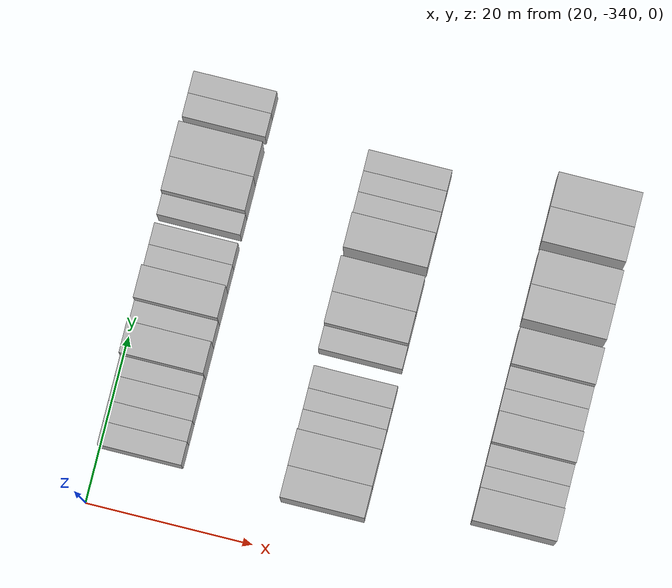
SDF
<sdf version="1.6">
 <world name="default">
  <model name="building_14">
   <static>1</static>
   <pose>25.0000 -332.0354 0 0.000000 0.000000 0.000000</pose>
   <link name="link">
    <pose>0 0 3.00 0 0 0</pose>
    <collision name="collision"><geometry><box><size>10.0000 2.7726 6.0000</size></box></geometry></collision>
    <visual name="visual">
     <cast_shadows>0</cast_shadows>
     <geometry><box><size>10.0000 2.7726 6.0000</size></box></geometry>
     <material>
      <script>
       <uri>model://HANNAS_wall/materials/scripts</uri>
       <uri>model://HANNAS_wall/materials/textures</uri>
       <name>vrc/HANNAS_wall</name>
      </script>
     </material>
    </visual>
   </link>
  </model>
  <model name="building_15">
   <static>1</static>
   <pose>25.0000 -329.4083 0 0.000000 0.000000 0.000000</pose>
   <link name="link">
    <pose>0 0 3.00 0 0 0</pose>
    <collision name="collision"><geometry><box><size>10.0000 2.4817 6.0000</size></box></geometry></collision>
    <visual name="visual">
     <cast_shadows>0</cast_shadows>
     <geometry><box><size>10.0000 2.4817 6.0000</size></box></geometry>
     <material>
      <script>
       <uri>model://HANNAS_wall/materials/scripts</uri>
       <uri>model://HANNAS_wall/materials/textures</uri>
       <name>vrc/HANNAS_wall</name>
      </script>
     </material>
    </visual>
   </link>
  </model>
  <model name="building_16">
   <static>1</static>
   <pose>25.0000 -326.6706 0 0.000000 0.000000 0.000000</pose>
   <link name="link">
    <pose>0 0 3.00 0 0 0</pose>
    <collision name="collision"><geometry><box><size>10.0000 2.9936 6.0000</size></box></geometry></collision>
    <visual name="visual">
     <cast_shadows>0</cast_shadows>
     <geometry><box><size>10.0000 2.9936 6.0000</size></box></geometry>
     <material>
      <script>
       <uri>model://HANNAS_wall/materials/scripts</uri>
       <uri>model://HANNAS_wall/materials/textures</uri>
       <name>vrc/HANNAS_wall</name>
      </script>
     </material>
    </visual>
   </link>
  </model>
  <model name="building_17">
   <static>1</static>
   <pose>25.0000 -323.9668 0 0.000000 0.000000 0.000000</pose>
   <link name="link">
    <pose>0 0 3.00 0 0 0</pose>
    <collision name="collision"><geometry><box><size>10.0000 2.4140 6.0000</size></box></geometry></collision>
    <visual name="visual">
     <cast_shadows>0</cast_shadows>
     <geometry><box><size>10.0000 2.4140 6.0000</size></box></geometry>
     <material>
      <script>
       <uri>model://HANNAS_wall/materials/scripts</uri>
       <uri>model://HANNAS_wall/materials/textures</uri>
       <name>vrc/HANNAS_wall</name>
      </script>
     </material>
    </visual>
   </link>
  </model>
  <model name="building_18">
   <static>1</static>
   <pose>25.0000 -320.8582 0 0.000000 0.000000 0.000000</pose>
   <link name="link">
    <pose>0 0 4.50 0 0 0</pose>
    <collision name="collision"><geometry><box><size>10.0000 3.8032 9.0000</size></box></geometry></collision>
    <visual name="visual">
     <cast_shadows>0</cast_shadows>
     <geometry><box><size>10.0000 3.8032 9.0000</size></box></geometry>
     <material>
      <script>
       <uri>model://HANNAS_wall/materials/scripts</uri>
       <uri>model://HANNAS_wall/materials/textures</uri>
       <name>vrc/HANNAS_wall</name>
      </script>
     </material>
    </visual>
   </link>
  </model>
  <model name="building_19">
   <static>1</static>
   <pose>25.0000 -317.5698 0 0.000000 0.000000 0.000000</pose>
   <link name="link">
    <pose>0 0 3.00 0 0 0</pose>
    <collision name="collision"><geometry><box><size>10.0000 2.7736 6.0000</size></box></geometry></collision>
    <visual name="visual">
     <cast_shadows>0</cast_shadows>
     <geometry><box><size>10.0000 2.7736 6.0000</size></box></geometry>
     <material>
      <script>
       <uri>model://HANNAS_wall/materials/scripts</uri>
       <uri>model://HANNAS_wall/materials/textures</uri>
       <name>vrc/HANNAS_wall</name>
      </script>
     </material>
    </visual>
   </link>
  </model>
  <model name="building_20">
   <static>1</static>
   <pose>25.0000 -314.2303 0 0.000000 0.000000 0.000000</pose>
   <link name="link">
    <pose>0 0 4.50 0 0 0</pose>
    <collision name="collision"><geometry><box><size>10.0000 3.9052 9.0000</size></box></geometry></collision>
    <visual name="visual">
     <cast_shadows>0</cast_shadows>
     <geometry><box><size>10.0000 3.9052 9.0000</size></box></geometry>
     <material>
      <script>
       <uri>model://HANNAS_wall/materials/scripts</uri>
       <uri>model://HANNAS_wall/materials/textures</uri>
       <name>vrc/HANNAS_wall</name>
      </script>
     </material>
    </visual>
   </link>
  </model>
  <model name="building_21">
   <static>1</static>
   <pose>25.0000 -310.8834 0 0.000000 0.000000 0.000000</pose>
   <link name="link">
    <pose>0 0 3.00 0 0 0</pose>
    <collision name="collision"><geometry><box><size>10.0000 2.7887 6.0000</size></box></geometry></collision>
    <visual name="visual">
     <cast_shadows>0</cast_shadows>
     <geometry><box><size>10.0000 2.7887 6.0000</size></box></geometry>
     <material>
      <script>
       <uri>model://HANNAS_wall/materials/scripts</uri>
       <uri>model://HANNAS_wall/materials/textures</uri>
       <name>vrc/HANNAS_wall</name>
      </script>
     </material>
    </visual>
   </link>
  </model>
  <model name="building_22">
   <static>1</static>
   <pose>25.0000 -308.1758 0 0.000000 0.000000 0.000000</pose>
   <link name="link">
    <pose>0 0 3.00 0 0 0</pose>
    <collision name="collision"><geometry><box><size>10.0000 2.6265 6.0000</size></box></geometry></collision>
    <visual name="visual">
     <cast_shadows>0</cast_shadows>
     <geometry><box><size>10.0000 2.6265 6.0000</size></box></geometry>
     <material>
      <script>
       <uri>model://HANNAS_wall/materials/scripts</uri>
       <uri>model://HANNAS_wall/materials/textures</uri>
       <name>vrc/HANNAS_wall</name>
      </script>
     </material>
    </visual>
   </link>
  </model>
  <model name="building_23">
   <static>1</static>
   <pose>25.0000 -304.6074 0 0.000000 0.000000 0.000000</pose>
   <link name="link">
    <pose>0 0 3.00 0 0 0</pose>
    <collision name="collision"><geometry><box><size>10.0000 2.5102 6.0000</size></box></geometry></collision>
    <visual name="visual">
     <cast_shadows>0</cast_shadows>
     <geometry><box><size>10.0000 2.5102 6.0000</size></box></geometry>
     <material>
      <script>
       <uri>model://HANNAS_wall/materials/scripts</uri>
       <uri>model://HANNAS_wall/materials/textures</uri>
       <name>vrc/HANNAS_wall</name>
      </script>
     </material>
    </visual>
   </link>
  </model>
  <model name="building_24">
   <static>1</static>
   <pose>25.0000 -301.3201 0 0.000000 0.000000 0.000000</pose>
   <link name="link">
    <pose>0 0 4.50 0 0 0</pose>
    <collision name="collision"><geometry><box><size>10.0000 4.0645 9.0000</size></box></geometry></collision>
    <visual name="visual">
     <cast_shadows>0</cast_shadows>
     <geometry><box><size>10.0000 4.0645 9.0000</size></box></geometry>
     <material>
      <script>
       <uri>model://HANNAS_wall/materials/scripts</uri>
       <uri>model://HANNAS_wall/materials/textures</uri>
       <name>vrc/HANNAS_wall</name>
      </script>
     </material>
    </visual>
   </link>
  </model>
  <model name="building_25">
   <static>1</static>
   <pose>25.0000 -297.1712 0 0.000000 0.000000 0.000000</pose>
   <link name="link">
    <pose>0 0 4.50 0 0 0</pose>
    <collision name="collision"><geometry><box><size>10.0000 4.2333 9.0000</size></box></geometry></collision>
    <visual name="visual">
     <cast_shadows>0</cast_shadows>
     <geometry><box><size>10.0000 4.2333 9.0000</size></box></geometry>
     <material>
      <script>
       <uri>model://HANNAS_wall/materials/scripts</uri>
       <uri>model://HANNAS_wall/materials/textures</uri>
       <name>vrc/HANNAS_wall</name>
      </script>
     </material>
    </visual>
   </link>
  </model>
  <model name="building_26">
   <static>1</static>
   <pose>25.0000 -292.6259 0 0.000000 0.000000 0.000000</pose>
   <link name="link">
    <pose>0 0 3.00 0 0 0</pose>
    <collision name="collision"><geometry><box><size>10.0000 2.8573 6.0000</size></box></geometry></collision>
    <visual name="visual">
     <cast_shadows>0</cast_shadows>
     <geometry><box><size>10.0000 2.8573 6.0000</size></box></geometry>
     <material>
      <script>
       <uri>model://HANNAS_wall/materials/scripts</uri>
       <uri>model://HANNAS_wall/materials/textures</uri>
       <name>vrc/HANNAS_wall</name>
      </script>
     </material>
    </visual>
   </link>
  </model>
  <model name="building_27">
   <static>1</static>
   <pose>25.0000 -289.8652 0 0.000000 0.000000 0.000000</pose>
   <link name="link">
    <pose>0 0 3.00 0 0 0</pose>
    <collision name="collision"><geometry><box><size>10.0000 2.6640 6.0000</size></box></geometry></collision>
    <visual name="visual">
     <cast_shadows>0</cast_shadows>
     <geometry><box><size>10.0000 2.6640 6.0000</size></box></geometry>
     <material>
      <script>
       <uri>model://HANNAS_wall/materials/scripts</uri>
       <uri>model://HANNAS_wall/materials/textures</uri>
       <name>vrc/HANNAS_wall</name>
      </script>
     </material>
    </visual>
   </link>
  </model>
  <model name="building_203">
   <static>1</static>
   <pose>47.0000 -332.4752 0 0.000000 0.000000 0.000000</pose>
   <link name="link">
    <pose>0 0 4.50 0 0 0</pose>
    <collision name="collision"><geometry><box><size>10.0000 3.7634 9.0000</size></box></geometry></collision>
    <visual name="visual">
     <cast_shadows>0</cast_shadows>
     <geometry><box><size>10.0000 3.7634 9.0000</size></box></geometry>
     <material>
      <script>
       <uri>model://HANNAS_wall/materials/scripts</uri>
       <uri>model://HANNAS_wall/materials/textures</uri>
       <name>vrc/HANNAS_wall</name>
      </script>
     </material>
    </visual>
   </link>
  </model>
  <model name="building_204">
   <static>1</static>
   <pose>47.0000 -328.4248 0 0.000000 0.000000 0.000000</pose>
   <link name="link">
    <pose>0 0 4.50 0 0 0</pose>
    <collision name="collision"><geometry><box><size>10.0000 4.3375 9.0000</size></box></geometry></collision>
    <visual name="visual">
     <cast_shadows>0</cast_shadows>
     <geometry><box><size>10.0000 4.3375 9.0000</size></box></geometry>
     <material>
      <script>
       <uri>model://HANNAS_wall/materials/scripts</uri>
       <uri>model://HANNAS_wall/materials/textures</uri>
       <name>vrc/HANNAS_wall</name>
      </script>
     </material>
    </visual>
   </link>
  </model>
  <model name="building_205">
   <static>1</static>
   <pose>47.0000 -324.9658 0 0.000000 0.000000 0.000000</pose>
   <link name="link">
    <pose>0 0 3.00 0 0 0</pose>
    <collision name="collision"><geometry><box><size>10.0000 2.5805 6.0000</size></box></geometry></collision>
    <visual name="visual">
     <cast_shadows>0</cast_shadows>
     <geometry><box><size>10.0000 2.5805 6.0000</size></box></geometry>
     <material>
      <script>
       <uri>model://HANNAS_wall/materials/scripts</uri>
       <uri>model://HANNAS_wall/materials/textures</uri>
       <name>vrc/HANNAS_wall</name>
      </script>
     </material>
    </visual>
   </link>
  </model>
  <model name="building_206">
   <static>1</static>
   <pose>47.0000 -322.4213 0 0.000000 0.000000 0.000000</pose>
   <link name="link">
    <pose>0 0 3.00 0 0 0</pose>
    <collision name="collision"><geometry><box><size>10.0000 2.5087 6.0000</size></box></geometry></collision>
    <visual name="visual">
     <cast_shadows>0</cast_shadows>
     <geometry><box><size>10.0000 2.5087 6.0000</size></box></geometry>
     <material>
      <script>
       <uri>model://HANNAS_wall/materials/scripts</uri>
       <uri>model://HANNAS_wall/materials/textures</uri>
       <name>vrc/HANNAS_wall</name>
      </script>
     </material>
    </visual>
   </link>
  </model>
  <model name="building_207">
   <static>1</static>
   <pose>47.0000 -319.8129 0 0.000000 0.000000 0.000000</pose>
   <link name="link">
    <pose>0 0 3.00 0 0 0</pose>
    <collision name="collision"><geometry><box><size>10.0000 2.7080 6.0000</size></box></geometry></collision>
    <visual name="visual">
     <cast_shadows>0</cast_shadows>
     <geometry><box><size>10.0000 2.7080 6.0000</size></box></geometry>
     <material>
      <script>
       <uri>model://HANNAS_wall/materials/scripts</uri>
       <uri>model://HANNAS_wall/materials/textures</uri>
       <name>vrc/HANNAS_wall</name>
      </script>
     </material>
    </visual>
   </link>
  </model>
  <model name="building_208">
   <static>1</static>
   <pose>47.0000 -315.0657 0 0.000000 0.000000 0.000000</pose>
   <link name="link">
    <pose>0 0 3.00 0 0 0</pose>
    <collision name="collision"><geometry><box><size>10.0000 2.7865 6.0000</size></box></geometry></collision>
    <visual name="visual">
     <cast_shadows>0</cast_shadows>
     <geometry><box><size>10.0000 2.7865 6.0000</size></box></geometry>
     <material>
      <script>
       <uri>model://HANNAS_wall/materials/scripts</uri>
       <uri>model://HANNAS_wall/materials/textures</uri>
       <name>vrc/HANNAS_wall</name>
      </script>
     </material>
    </visual>
   </link>
  </model>
  <model name="building_209">
   <static>1</static>
   <pose>47.0000 -311.7976 0 0.000000 0.000000 0.000000</pose>
   <link name="link">
    <pose>0 0 4.50 0 0 0</pose>
    <collision name="collision"><geometry><box><size>10.0000 3.7497 9.0000</size></box></geometry></collision>
    <visual name="visual">
     <cast_shadows>0</cast_shadows>
     <geometry><box><size>10.0000 3.7497 9.0000</size></box></geometry>
     <material>
      <script>
       <uri>model://HANNAS_wall/materials/scripts</uri>
       <uri>model://HANNAS_wall/materials/textures</uri>
       <name>vrc/HANNAS_wall</name>
      </script>
     </material>
    </visual>
   </link>
  </model>
  <model name="building_210">
   <static>1</static>
   <pose>47.0000 -307.7801 0 0.000000 0.000000 0.000000</pose>
   <link name="link">
    <pose>0 0 4.50 0 0 0</pose>
    <collision name="collision"><geometry><box><size>10.0000 4.2852 9.0000</size></box></geometry></collision>
    <visual name="visual">
     <cast_shadows>0</cast_shadows>
     <geometry><box><size>10.0000 4.2852 9.0000</size></box></geometry>
     <material>
      <script>
       <uri>model://HANNAS_wall/materials/scripts</uri>
       <uri>model://HANNAS_wall/materials/textures</uri>
       <name>vrc/HANNAS_wall</name>
      </script>
     </material>
    </visual>
   </link>
  </model>
  <model name="building_211">
   <static>1</static>
   <pose>47.0000 -302.5519 0 0.000000 0.000000 0.000000</pose>
   <link name="link">
    <pose>0 0 4.50 0 0 0</pose>
    <collision name="collision"><geometry><box><size>10.0000 4.1712 9.0000</size></box></geometry></collision>
    <visual name="visual">
     <cast_shadows>0</cast_shadows>
     <geometry><box><size>10.0000 4.1712 9.0000</size></box></geometry>
     <material>
      <script>
       <uri>model://HANNAS_wall/materials/scripts</uri>
       <uri>model://HANNAS_wall/materials/textures</uri>
       <name>vrc/HANNAS_wall</name>
      </script>
     </material>
    </visual>
   </link>
  </model>
  <model name="building_212">
   <static>1</static>
   <pose>47.0000 -299.0292 0 0.000000 0.000000 0.000000</pose>
   <link name="link">
    <pose>0 0 3.00 0 0 0</pose>
    <collision name="collision"><geometry><box><size>10.0000 2.8743 6.0000</size></box></geometry></collision>
    <visual name="visual">
     <cast_shadows>0</cast_shadows>
     <geometry><box><size>10.0000 2.8743 6.0000</size></box></geometry>
     <material>
      <script>
       <uri>model://HANNAS_wall/materials/scripts</uri>
       <uri>model://HANNAS_wall/materials/textures</uri>
       <name>vrc/HANNAS_wall</name>
      </script>
     </material>
    </visual>
   </link>
  </model>
  <model name="building_213">
   <static>1</static>
   <pose>47.0000 -296.3271 0 0.000000 0.000000 0.000000</pose>
   <link name="link">
    <pose>0 0 3.00 0 0 0</pose>
    <collision name="collision"><geometry><box><size>10.0000 2.5298 6.0000</size></box></geometry></collision>
    <visual name="visual">
     <cast_shadows>0</cast_shadows>
     <geometry><box><size>10.0000 2.5298 6.0000</size></box></geometry>
     <material>
      <script>
       <uri>model://HANNAS_wall/materials/scripts</uri>
       <uri>model://HANNAS_wall/materials/textures</uri>
       <name>vrc/HANNAS_wall</name>
      </script>
     </material>
    </visual>
   </link>
  </model>
  <model name="building_214">
   <static>1</static>
   <pose>47.0000 -293.7950 0 0.000000 0.000000 0.000000</pose>
   <link name="link">
    <pose>0 0 3.00 0 0 0</pose>
    <collision name="collision"><geometry><box><size>10.0000 2.5344 6.0000</size></box></geometry></collision>
    <visual name="visual">
     <cast_shadows>0</cast_shadows>
     <geometry><box><size>10.0000 2.5344 6.0000</size></box></geometry>
     <material>
      <script>
       <uri>model://HANNAS_wall/materials/scripts</uri>
       <uri>model://HANNAS_wall/materials/textures</uri>
       <name>vrc/HANNAS_wall</name>
      </script>
     </material>
    </visual>
   </link>
  </model>
  <model name="building_396">
   <static>1</static>
   <pose>69.0000 -329.6033 0 0.000000 0.000000 0.000000</pose>
   <link name="link">
    <pose>0 0 4.50 0 0 0</pose>
    <collision name="collision"><geometry><box><size>10.0000 3.9208 9.0000</size></box></geometry></collision>
    <visual name="visual">
     <cast_shadows>0</cast_shadows>
     <geometry><box><size>10.0000 3.9208 9.0000</size></box></geometry>
     <material>
      <script>
       <uri>model://HANNAS_wall/materials/scripts</uri>
       <uri>model://HANNAS_wall/materials/textures</uri>
       <name>vrc/HANNAS_wall</name>
      </script>
     </material>
    </visual>
   </link>
  </model>
  <model name="building_397">
   <static>1</static>
   <pose>69.0000 -326.2648 0 0.000000 0.000000 0.000000</pose>
   <link name="link">
    <pose>0 0 3.00 0 0 0</pose>
    <collision name="collision"><geometry><box><size>10.0000 2.7561 6.0000</size></box></geometry></collision>
    <visual name="visual">
     <cast_shadows>0</cast_shadows>
     <geometry><box><size>10.0000 2.7561 6.0000</size></box></geometry>
     <material>
      <script>
       <uri>model://HANNAS_wall/materials/scripts</uri>
       <uri>model://HANNAS_wall/materials/textures</uri>
       <name>vrc/HANNAS_wall</name>
      </script>
     </material>
    </visual>
   </link>
  </model>
  <model name="building_398">
   <static>1</static>
   <pose>69.0000 -323.5770 0 0.000000 0.000000 0.000000</pose>
   <link name="link">
    <pose>0 0 3.00 0 0 0</pose>
    <collision name="collision"><geometry><box><size>10.0000 2.6195 6.0000</size></box></geometry></collision>
    <visual name="visual">
     <cast_shadows>0</cast_shadows>
     <geometry><box><size>10.0000 2.6195 6.0000</size></box></geometry>
     <material>
      <script>
       <uri>model://HANNAS_wall/materials/scripts</uri>
       <uri>model://HANNAS_wall/materials/textures</uri>
       <name>vrc/HANNAS_wall</name>
      </script>
     </material>
    </visual>
   </link>
  </model>
  <model name="building_399">
   <static>1</static>
   <pose>69.0000 -320.4247 0 0.000000 0.000000 0.000000</pose>
   <link name="link">
    <pose>0 0 4.50 0 0 0</pose>
    <collision name="collision"><geometry><box><size>10.0000 3.6851 9.0000</size></box></geometry></collision>
    <visual name="visual">
     <cast_shadows>0</cast_shadows>
     <geometry><box><size>10.0000 3.6851 9.0000</size></box></geometry>
     <material>
      <script>
       <uri>model://HANNAS_wall/materials/scripts</uri>
       <uri>model://HANNAS_wall/materials/textures</uri>
       <name>vrc/HANNAS_wall</name>
      </script>
     </material>
    </visual>
   </link>
  </model>
  <model name="building_400">
   <static>1</static>
   <pose>69.0000 -317.1289 0 0.000000 0.000000 0.000000</pose>
   <link name="link">
    <pose>0 0 3.00 0 0 0</pose>
    <collision name="collision"><geometry><box><size>10.0000 2.9066 6.0000</size></box></geometry></collision>
    <visual name="visual">
     <cast_shadows>0</cast_shadows>
     <geometry><box><size>10.0000 2.9066 6.0000</size></box></geometry>
     <material>
      <script>
       <uri>model://HANNAS_wall/materials/scripts</uri>
       <uri>model://HANNAS_wall/materials/textures</uri>
       <name>vrc/HANNAS_wall</name>
      </script>
     </material>
    </visual>
   </link>
  </model>
  <model name="building_401">
   <static>1</static>
   <pose>69.0000 -314.3361 0 0.000000 0.000000 0.000000</pose>
   <link name="link">
    <pose>0 0 3.00 0 0 0</pose>
    <collision name="collision"><geometry><box><size>10.0000 2.6791 6.0000</size></box></geometry></collision>
    <visual name="visual">
     <cast_shadows>0</cast_shadows>
     <geometry><box><size>10.0000 2.6791 6.0000</size></box></geometry>
     <material>
      <script>
       <uri>model://HANNAS_wall/materials/scripts</uri>
       <uri>model://HANNAS_wall/materials/textures</uri>
       <name>vrc/HANNAS_wall</name>
      </script>
     </material>
    </visual>
   </link>
  </model>
  <model name="building_402">
   <static>1</static>
   <pose>69.0000 -310.8265 0 0.000000 0.000000 0.000000</pose>
   <link name="link">
    <pose>0 0 4.50 0 0 0</pose>
    <collision name="collision"><geometry><box><size>10.0000 4.3401 9.0000</size></box></geometry></collision>
    <visual name="visual">
     <cast_shadows>0</cast_shadows>
     <geometry><box><size>10.0000 4.3401 9.0000</size></box></geometry>
     <material>
      <script>
       <uri>model://HANNAS_wall/materials/scripts</uri>
       <uri>model://HANNAS_wall/materials/textures</uri>
       <name>vrc/HANNAS_wall</name>
      </script>
     </material>
    </visual>
   </link>
  </model>
  <model name="building_403">
   <static>1</static>
   <pose>69.0000 -305.5766 0 0.000000 0.000000 0.000000</pose>
   <link name="link">
    <pose>0 0 4.50 0 0 0</pose>
    <collision name="collision"><geometry><box><size>10.0000 4.1598 9.0000</size></box></geometry></collision>
    <visual name="visual">
     <cast_shadows>0</cast_shadows>
     <geometry><box><size>10.0000 4.1598 9.0000</size></box></geometry>
     <material>
      <script>
       <uri>model://HANNAS_wall/materials/scripts</uri>
       <uri>model://HANNAS_wall/materials/textures</uri>
       <name>vrc/HANNAS_wall</name>
      </script>
     </material>
    </visual>
   </link>
  </model>
  <model name="building_404">
   <static>1</static>
   <pose>69.0000 -301.4494 0 0.000000 0.000000 0.000000</pose>
   <link name="link">
    <pose>0 0 4.50 0 0 0</pose>
    <collision name="collision"><geometry><box><size>10.0000 4.0946 9.0000</size></box></geometry></collision>
    <visual name="visual">
     <cast_shadows>0</cast_shadows>
     <geometry><box><size>10.0000 4.0946 9.0000</size></box></geometry>
     <material>
      <script>
       <uri>model://HANNAS_wall/materials/scripts</uri>
       <uri>model://HANNAS_wall/materials/textures</uri>
       <name>vrc/HANNAS_wall</name>
      </script>
     </material>
    </visual>
   </link>
  </model>
  <model name="building_405">
   <static>1</static>
   <pose>69.0000 -296.3209 0 0.000000 0.000000 0.000000</pose>
   <link name="link">
    <pose>0 0 4.50 0 0 0</pose>
    <collision name="collision"><geometry><box><size>10.0000 4.1624 9.0000</size></box></geometry></collision>
    <visual name="visual">
     <cast_shadows>0</cast_shadows>
     <geometry><box><size>10.0000 4.1624 9.0000</size></box></geometry>
     <material>
      <script>
       <uri>model://HANNAS_wall/materials/scripts</uri>
       <uri>model://HANNAS_wall/materials/textures</uri>
       <name>vrc/HANNAS_wall</name>
      </script>
     </material>
    </visual>
   </link>
  </model>
  <model name="building_406">
   <static>1</static>
   <pose>69.0000 -292.1699 0 0.000000 0.000000 0.000000</pose>
   <link name="link">
    <pose>0 0 4.50 0 0 0</pose>
    <collision name="collision"><geometry><box><size>10.0000 4.1395 9.0000</size></box></geometry></collision>
    <visual name="visual">
     <cast_shadows>0</cast_shadows>
     <geometry><box><size>10.0000 4.1395 9.0000</size></box></geometry>
     <material>
      <script>
       <uri>model://HANNAS_wall/materials/scripts</uri>
       <uri>model://HANNAS_wall/materials/textures</uri>
       <name>vrc/HANNAS_wall</name>
      </script>
     </material>
    </visual>
   </link>
  </model>
 </world>
</sdf>
